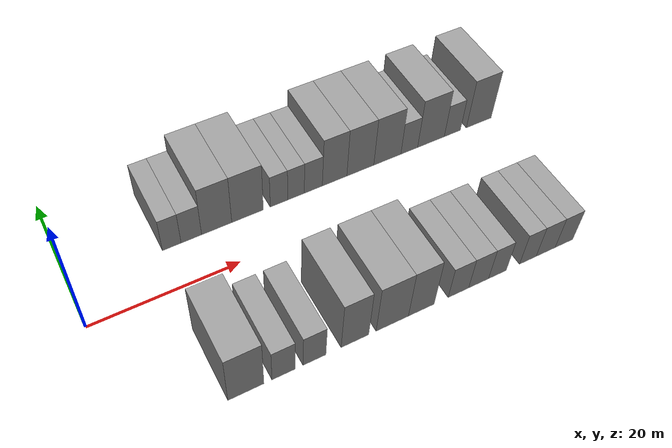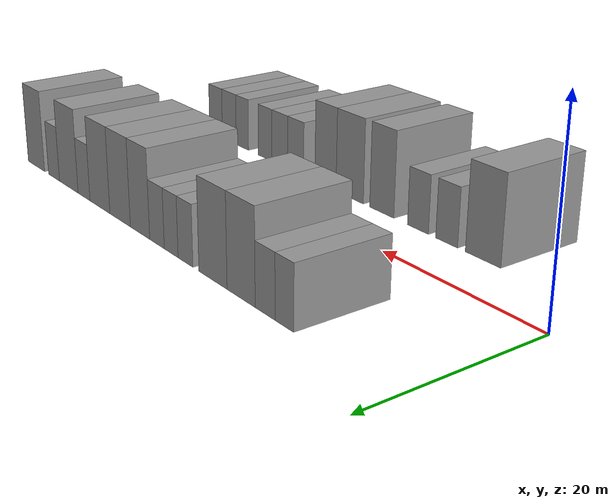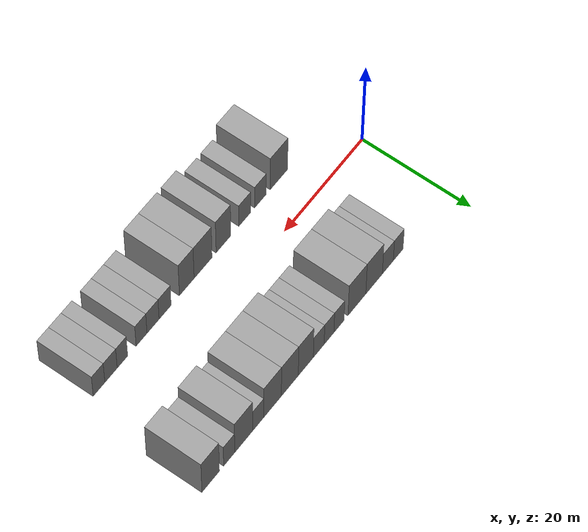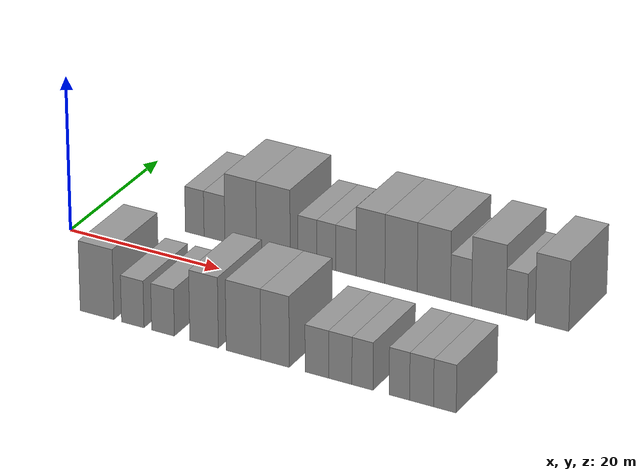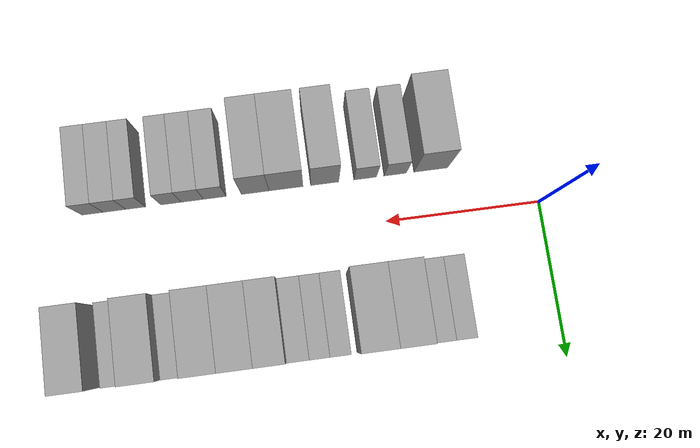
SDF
<sdf version="1.6">
 <world name="default">
  <model name="building_1">
   <static>1</static>
   <pose>13.2620 11.0000 0 0.000000 0.000000 1.570796</pose>
   <link name="link">
    <pose>0 0 3.00 0 0 0</pose>
    <collision name="collision"><geometry><box><size>10.0000 2.5239 6.0000</size></box></geometry></collision>
    <visual name="visual">
     <cast_shadows>0</cast_shadows>
     <geometry><box><size>10.0000 2.5239 6.0000</size></box></geometry>
     <material>
      <script>
       <uri>model://grey_wall/materials/scripts</uri>
       <uri>model://grey_wall/materials/textures</uri>
       <name>vrc/grey_wall</name>
      </script>
     </material>
    </visual>
   </link>
  </model>
  <model name="building_2">
   <static>1</static>
   <pose>15.9279 11.0000 0 0.000000 0.000000 1.570796</pose>
   <link name="link">
    <pose>0 0 3.00 0 0 0</pose>
    <collision name="collision"><geometry><box><size>10.0000 2.8079 6.0000</size></box></geometry></collision>
    <visual name="visual">
     <cast_shadows>0</cast_shadows>
     <geometry><box><size>10.0000 2.8079 6.0000</size></box></geometry>
     <material>
      <script>
       <uri>model://grey_wall/materials/scripts</uri>
       <uri>model://grey_wall/materials/textures</uri>
       <name>vrc/grey_wall</name>
      </script>
     </material>
    </visual>
   </link>
  </model>
  <model name="building_3">
   <static>1</static>
   <pose>19.4337 11.0000 0 0.000000 0.000000 1.570796</pose>
   <link name="link">
    <pose>0 0 4.50 0 0 0</pose>
    <collision name="collision"><geometry><box><size>10.0000 4.2038 9.0000</size></box></geometry></collision>
    <visual name="visual">
     <cast_shadows>0</cast_shadows>
     <geometry><box><size>10.0000 4.2038 9.0000</size></box></geometry>
     <material>
      <script>
       <uri>model://grey_wall/materials/scripts</uri>
       <uri>model://grey_wall/materials/textures</uri>
       <name>vrc/grey_wall</name>
      </script>
     </material>
    </visual>
   </link>
  </model>
  <model name="building_4">
   <static>1</static>
   <pose>23.7834 11.0000 0 0.000000 0.000000 1.570796</pose>
   <link name="link">
    <pose>0 0 4.50 0 0 0</pose>
    <collision name="collision"><geometry><box><size>10.0000 4.4956 9.0000</size></box></geometry></collision>
    <visual name="visual">
     <cast_shadows>0</cast_shadows>
     <geometry><box><size>10.0000 4.4956 9.0000</size></box></geometry>
     <material>
      <script>
       <uri>model://grey_wall/materials/scripts</uri>
       <uri>model://grey_wall/materials/textures</uri>
       <name>vrc/grey_wall</name>
      </script>
     </material>
    </visual>
   </link>
  </model>
  <model name="building_5">
   <static>1</static>
   <pose>28.2973 11.0000 0 0.000000 0.000000 1.570796</pose>
   <link name="link">
    <pose>0 0 3.00 0 0 0</pose>
    <collision name="collision"><geometry><box><size>10.0000 2.5322 6.0000</size></box></geometry></collision>
    <visual name="visual">
     <cast_shadows>0</cast_shadows>
     <geometry><box><size>10.0000 2.5322 6.0000</size></box></geometry>
     <material>
      <script>
       <uri>model://grey_wall/materials/scripts</uri>
       <uri>model://grey_wall/materials/textures</uri>
       <name>vrc/grey_wall</name>
      </script>
     </material>
    </visual>
   </link>
  </model>
  <model name="building_6">
   <static>1</static>
   <pose>30.7868 11.0000 0 0.000000 0.000000 1.570796</pose>
   <link name="link">
    <pose>0 0 3.00 0 0 0</pose>
    <collision name="collision"><geometry><box><size>10.0000 2.4468 6.0000</size></box></geometry></collision>
    <visual name="visual">
     <cast_shadows>0</cast_shadows>
     <geometry><box><size>10.0000 2.4468 6.0000</size></box></geometry>
     <material>
      <script>
       <uri>model://grey_wall/materials/scripts</uri>
       <uri>model://grey_wall/materials/textures</uri>
       <name>vrc/grey_wall</name>
      </script>
     </material>
    </visual>
   </link>
  </model>
  <model name="building_7">
   <static>1</static>
   <pose>33.3563 11.0000 0 0.000000 0.000000 1.570796</pose>
   <link name="link">
    <pose>0 0 3.00 0 0 0</pose>
    <collision name="collision"><geometry><box><size>10.0000 2.6920 6.0000</size></box></geometry></collision>
    <visual name="visual">
     <cast_shadows>0</cast_shadows>
     <geometry><box><size>10.0000 2.6920 6.0000</size></box></geometry>
     <material>
      <script>
       <uri>model://grey_wall/materials/scripts</uri>
       <uri>model://grey_wall/materials/textures</uri>
       <name>vrc/grey_wall</name>
      </script>
     </material>
    </visual>
   </link>
  </model>
  <model name="building_8">
   <static>1</static>
   <pose>36.5656 11.0000 0 0.000000 0.000000 1.570796</pose>
   <link name="link">
    <pose>0 0 4.50 0 0 0</pose>
    <collision name="collision"><geometry><box><size>10.0000 3.7267 9.0000</size></box></geometry></collision>
    <visual name="visual">
     <cast_shadows>0</cast_shadows>
     <geometry><box><size>10.0000 3.7267 9.0000</size></box></geometry>
     <material>
      <script>
       <uri>model://grey_wall/materials/scripts</uri>
       <uri>model://grey_wall/materials/textures</uri>
       <name>vrc/grey_wall</name>
      </script>
     </material>
    </visual>
   </link>
  </model>
  <model name="building_9">
   <static>1</static>
   <pose>40.5129 11.0000 0 0.000000 0.000000 1.570796</pose>
   <link name="link">
    <pose>0 0 4.50 0 0 0</pose>
    <collision name="collision"><geometry><box><size>10.0000 4.1679 9.0000</size></box></geometry></collision>
    <visual name="visual">
     <cast_shadows>0</cast_shadows>
     <geometry><box><size>10.0000 4.1679 9.0000</size></box></geometry>
     <material>
      <script>
       <uri>model://grey_wall/materials/scripts</uri>
       <uri>model://grey_wall/materials/textures</uri>
       <name>vrc/grey_wall</name>
      </script>
     </material>
    </visual>
   </link>
  </model>
  <model name="building_10">
   <static>1</static>
   <pose>44.7344 11.0000 0 0.000000 0.000000 1.570796</pose>
   <link name="link">
    <pose>0 0 4.50 0 0 0</pose>
    <collision name="collision"><geometry><box><size>10.0000 4.2751 9.0000</size></box></geometry></collision>
    <visual name="visual">
     <cast_shadows>0</cast_shadows>
     <geometry><box><size>10.0000 4.2751 9.0000</size></box></geometry>
     <material>
      <script>
       <uri>model://grey_wall/materials/scripts</uri>
       <uri>model://grey_wall/materials/textures</uri>
       <name>vrc/grey_wall</name>
      </script>
     </material>
    </visual>
   </link>
  </model>
  <model name="building_11">
   <static>1</static>
   <pose>48.2153 11.0000 0 0.000000 0.000000 1.570796</pose>
   <link name="link">
    <pose>0 0 3.00 0 0 0</pose>
    <collision name="collision"><geometry><box><size>10.0000 2.6868 6.0000</size></box></geometry></collision>
    <visual name="visual">
     <cast_shadows>0</cast_shadows>
     <geometry><box><size>10.0000 2.6868 6.0000</size></box></geometry>
     <material>
      <script>
       <uri>model://grey_wall/materials/scripts</uri>
       <uri>model://grey_wall/materials/textures</uri>
       <name>vrc/grey_wall</name>
      </script>
     </material>
    </visual>
   </link>
  </model>
  <model name="building_12">
   <static>1</static>
   <pose>51.7412 11.0000 0 0.000000 0.000000 1.570796</pose>
   <link name="link">
    <pose>0 0 4.50 0 0 0</pose>
    <collision name="collision"><geometry><box><size>10.0000 4.3649 9.0000</size></box></geometry></collision>
    <visual name="visual">
     <cast_shadows>0</cast_shadows>
     <geometry><box><size>10.0000 4.3649 9.0000</size></box></geometry>
     <material>
      <script>
       <uri>model://grey_wall/materials/scripts</uri>
       <uri>model://grey_wall/materials/textures</uri>
       <name>vrc/grey_wall</name>
      </script>
     </material>
    </visual>
   </link>
  </model>
  <model name="building_13">
   <static>1</static>
   <pose>55.2586 11.0000 0 0.000000 0.000000 1.570796</pose>
   <link name="link">
    <pose>0 0 3.00 0 0 0</pose>
    <collision name="collision"><geometry><box><size>10.0000 2.6699 6.0000</size></box></geometry></collision>
    <visual name="visual">
     <cast_shadows>0</cast_shadows>
     <geometry><box><size>10.0000 2.6699 6.0000</size></box></geometry>
     <material>
      <script>
       <uri>model://grey_wall/materials/scripts</uri>
       <uri>model://grey_wall/materials/textures</uri>
       <name>vrc/grey_wall</name>
      </script>
     </material>
    </visual>
   </link>
  </model>
  <model name="building_14">
   <static>1</static>
   <pose>59.6902 11.0000 0 0.000000 0.000000 1.570796</pose>
   <link name="link">
    <pose>0 0 4.50 0 0 0</pose>
    <collision name="collision"><geometry><box><size>10.0000 4.1933 9.0000</size></box></geometry></collision>
    <visual name="visual">
     <cast_shadows>0</cast_shadows>
     <geometry><box><size>10.0000 4.1933 9.0000</size></box></geometry>
     <material>
      <script>
       <uri>model://grey_wall/materials/scripts</uri>
       <uri>model://grey_wall/materials/textures</uri>
       <name>vrc/grey_wall</name>
      </script>
     </material>
    </visual>
   </link>
  </model>
  <model name="building_56">
   <static>1</static>
   <pose>13.2249 -11.0000 0 0.000000 0.000000 1.570796</pose>
   <link name="link">
    <pose>0 0 4.50 0 0 0</pose>
    <collision name="collision"><geometry><box><size>10.0000 4.4498 9.0000</size></box></geometry></collision>
    <visual name="visual">
     <cast_shadows>0</cast_shadows>
     <geometry><box><size>10.0000 4.4498 9.0000</size></box></geometry>
     <material>
      <script>
       <uri>model://grey_wall/materials/scripts</uri>
       <uri>model://grey_wall/materials/textures</uri>
       <name>vrc/grey_wall</name>
      </script>
     </material>
    </visual>
   </link>
  </model>
  <model name="building_57">
   <static>1</static>
   <pose>17.9201 -11.0000 0 0.000000 0.000000 1.570796</pose>
   <link name="link">
    <pose>0 0 3.00 0 0 0</pose>
    <collision name="collision"><geometry><box><size>10.0000 2.9406 6.0000</size></box></geometry></collision>
    <visual name="visual">
     <cast_shadows>0</cast_shadows>
     <geometry><box><size>10.0000 2.9406 6.0000</size></box></geometry>
     <material>
      <script>
       <uri>model://grey_wall/materials/scripts</uri>
       <uri>model://grey_wall/materials/textures</uri>
       <name>vrc/grey_wall</name>
      </script>
     </material>
    </visual>
   </link>
  </model>
  <model name="building_58">
   <static>1</static>
   <pose>21.8695 -11.0000 0 0.000000 0.000000 1.570796</pose>
   <link name="link">
    <pose>0 0 3.00 0 0 0</pose>
    <collision name="collision"><geometry><box><size>10.0000 2.9582 6.0000</size></box></geometry></collision>
    <visual name="visual">
     <cast_shadows>0</cast_shadows>
     <geometry><box><size>10.0000 2.9582 6.0000</size></box></geometry>
     <material>
      <script>
       <uri>model://grey_wall/materials/scripts</uri>
       <uri>model://grey_wall/materials/textures</uri>
       <name>vrc/grey_wall</name>
      </script>
     </material>
    </visual>
   </link>
  </model>
  <model name="building_59">
   <static>1</static>
   <pose>27.1877 -11.0000 0 0.000000 0.000000 1.570796</pose>
   <link name="link">
    <pose>0 0 4.50 0 0 0</pose>
    <collision name="collision"><geometry><box><size>10.0000 3.6783 9.0000</size></box></geometry></collision>
    <visual name="visual">
     <cast_shadows>0</cast_shadows>
     <geometry><box><size>10.0000 3.6783 9.0000</size></box></geometry>
     <material>
      <script>
       <uri>model://grey_wall/materials/scripts</uri>
       <uri>model://grey_wall/materials/textures</uri>
       <name>vrc/grey_wall</name>
      </script>
     </material>
    </visual>
   </link>
  </model>
  <model name="building_60">
   <static>1</static>
   <pose>32.2404 -11.0000 0 0.000000 0.000000 1.570796</pose>
   <link name="link">
    <pose>0 0 4.50 0 0 0</pose>
    <collision name="collision"><geometry><box><size>10.0000 4.4270 9.0000</size></box></geometry></collision>
    <visual name="visual">
     <cast_shadows>0</cast_shadows>
     <geometry><box><size>10.0000 4.4270 9.0000</size></box></geometry>
     <material>
      <script>
       <uri>model://grey_wall/materials/scripts</uri>
       <uri>model://grey_wall/materials/textures</uri>
       <name>vrc/grey_wall</name>
      </script>
     </material>
    </visual>
   </link>
  </model>
  <model name="building_61">
   <static>1</static>
   <pose>36.2600 -11.0000 0 0.000000 0.000000 1.570796</pose>
   <link name="link">
    <pose>0 0 4.50 0 0 0</pose>
    <collision name="collision"><geometry><box><size>10.0000 3.6122 9.0000</size></box></geometry></collision>
    <visual name="visual">
     <cast_shadows>0</cast_shadows>
     <geometry><box><size>10.0000 3.6122 9.0000</size></box></geometry>
     <material>
      <script>
       <uri>model://grey_wall/materials/scripts</uri>
       <uri>model://grey_wall/materials/textures</uri>
       <name>vrc/grey_wall</name>
      </script>
     </material>
    </visual>
   </link>
  </model>
  <model name="building_62">
   <static>1</static>
   <pose>41.5391 -11.0000 0 0.000000 0.000000 1.570796</pose>
   <link name="link">
    <pose>0 0 3.00 0 0 0</pose>
    <collision name="collision"><geometry><box><size>10.0000 2.9460 6.0000</size></box></geometry></collision>
    <visual name="visual">
     <cast_shadows>0</cast_shadows>
     <geometry><box><size>10.0000 2.9460 6.0000</size></box></geometry>
     <material>
      <script>
       <uri>model://grey_wall/materials/scripts</uri>
       <uri>model://grey_wall/materials/textures</uri>
       <name>vrc/grey_wall</name>
      </script>
     </material>
    </visual>
   </link>
  </model>
  <model name="building_63">
   <static>1</static>
   <pose>44.4759 -11.0000 0 0.000000 0.000000 1.570796</pose>
   <link name="link">
    <pose>0 0 3.00 0 0 0</pose>
    <collision name="collision"><geometry><box><size>10.0000 2.9277 6.0000</size></box></geometry></collision>
    <visual name="visual">
     <cast_shadows>0</cast_shadows>
     <geometry><box><size>10.0000 2.9277 6.0000</size></box></geometry>
     <material>
      <script>
       <uri>model://grey_wall/materials/scripts</uri>
       <uri>model://grey_wall/materials/textures</uri>
       <name>vrc/grey_wall</name>
      </script>
     </material>
    </visual>
   </link>
  </model>
  <model name="building_64">
   <static>1</static>
   <pose>47.2552 -11.0000 0 0.000000 0.000000 1.570796</pose>
   <link name="link">
    <pose>0 0 3.00 0 0 0</pose>
    <collision name="collision"><geometry><box><size>10.0000 2.6308 6.0000</size></box></geometry></collision>
    <visual name="visual">
     <cast_shadows>0</cast_shadows>
     <geometry><box><size>10.0000 2.6308 6.0000</size></box></geometry>
     <material>
      <script>
       <uri>model://grey_wall/materials/scripts</uri>
       <uri>model://grey_wall/materials/textures</uri>
       <name>vrc/grey_wall</name>
      </script>
     </material>
    </visual>
   </link>
  </model>
  <model name="building_65">
   <static>1</static>
   <pose>51.8342 -11.0000 0 0.000000 0.000000 1.570796</pose>
   <link name="link">
    <pose>0 0 3.00 0 0 0</pose>
    <collision name="collision"><geometry><box><size>10.0000 2.5273 6.0000</size></box></geometry></collision>
    <visual name="visual">
     <cast_shadows>0</cast_shadows>
     <geometry><box><size>10.0000 2.5273 6.0000</size></box></geometry>
     <material>
      <script>
       <uri>model://grey_wall/materials/scripts</uri>
       <uri>model://grey_wall/materials/textures</uri>
       <name>vrc/grey_wall</name>
      </script>
     </material>
    </visual>
   </link>
  </model>
  <model name="building_66">
   <static>1</static>
   <pose>54.5648 -11.0000 0 0.000000 0.000000 1.570796</pose>
   <link name="link">
    <pose>0 0 3.00 0 0 0</pose>
    <collision name="collision"><geometry><box><size>10.0000 2.9340 6.0000</size></box></geometry></collision>
    <visual name="visual">
     <cast_shadows>0</cast_shadows>
     <geometry><box><size>10.0000 2.9340 6.0000</size></box></geometry>
     <material>
      <script>
       <uri>model://grey_wall/materials/scripts</uri>
       <uri>model://grey_wall/materials/textures</uri>
       <name>vrc/grey_wall</name>
      </script>
     </material>
    </visual>
   </link>
  </model>
  <model name="building_67">
   <static>1</static>
   <pose>57.4182 -11.0000 0 0.000000 0.000000 1.570796</pose>
   <link name="link">
    <pose>0 0 3.00 0 0 0</pose>
    <collision name="collision"><geometry><box><size>10.0000 2.7728 6.0000</size></box></geometry></collision>
    <visual name="visual">
     <cast_shadows>0</cast_shadows>
     <geometry><box><size>10.0000 2.7728 6.0000</size></box></geometry>
     <material>
      <script>
       <uri>model://grey_wall/materials/scripts</uri>
       <uri>model://grey_wall/materials/textures</uri>
       <name>vrc/grey_wall</name>
      </script>
     </material>
    </visual>
   </link>
  </model>
 </world>
</sdf>
